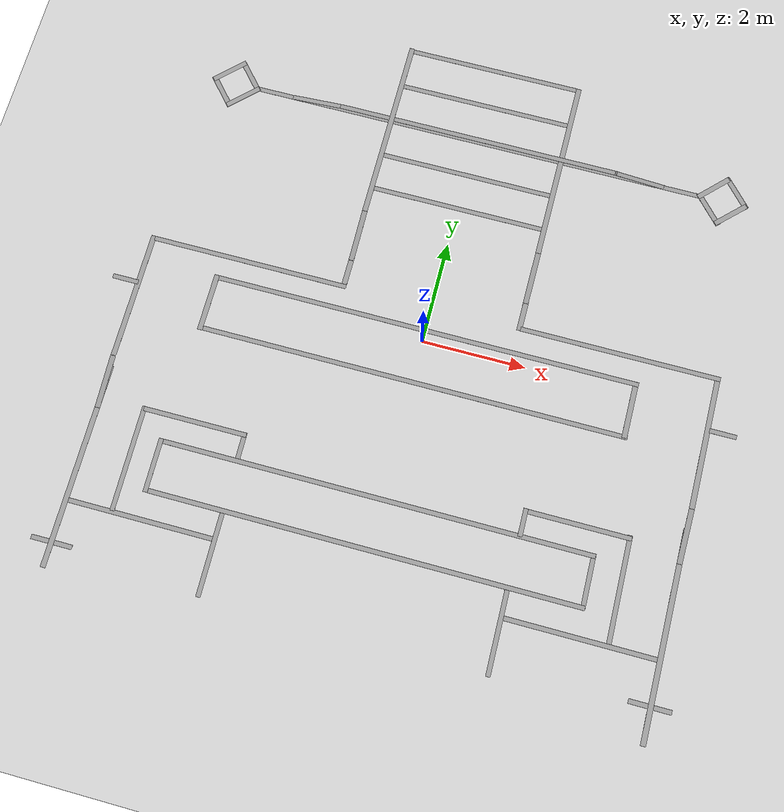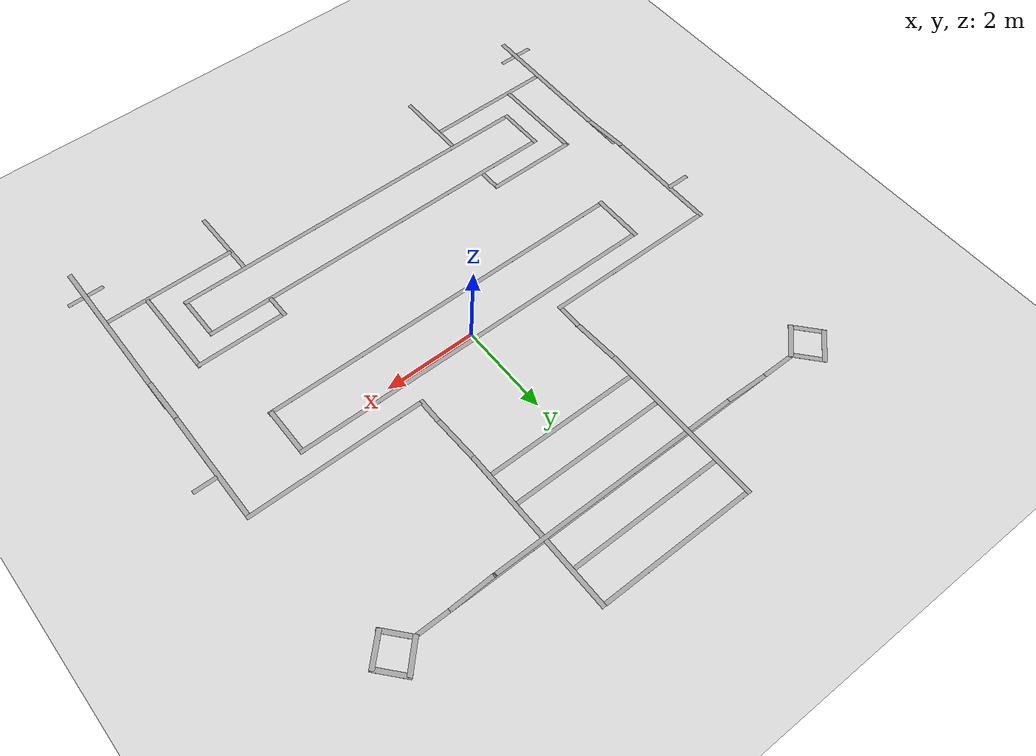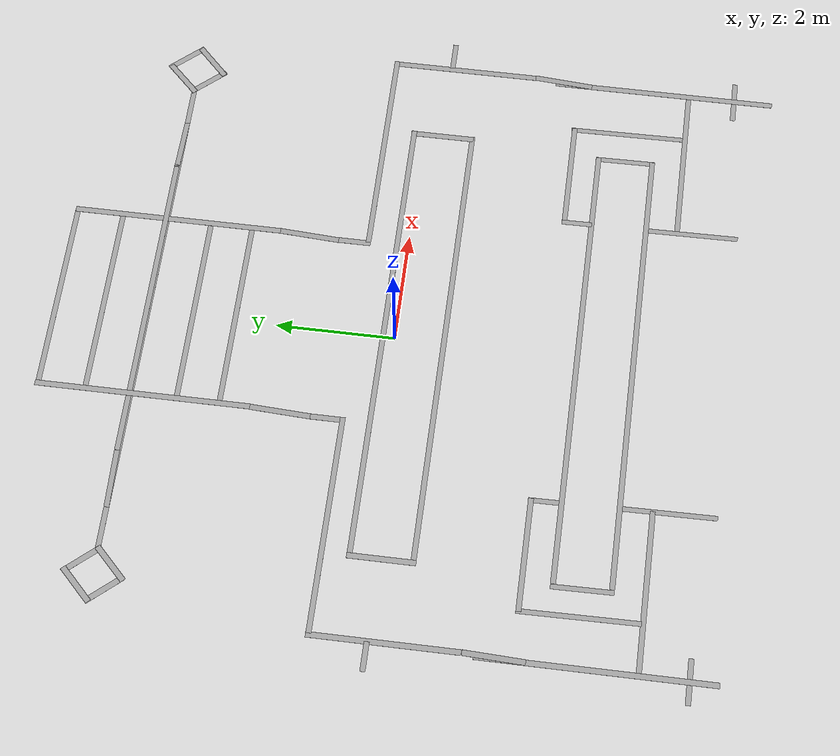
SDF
<sdf version="1.7">
 <world name="default">
  <light name="sun" type="directional">
   <pose>0 0 10 0 -0 0</pose>
   <diffuse>0.8 0.8 0.8 1</diffuse>
   <specular>0.2 0.2 0.2 1</specular>
   <attenuation>
    <range>1000</range>
    <constant>0.9</constant>
    <linear>0.01</linear>
    <quadratic>0.001</quadratic>
   </attenuation>
   <direction>-0.5 0.1 -0.9</direction>
   <spot><inner_angle>0</inner_angle><outer_angle>0</outer_angle><falloff>0</falloff></spot>
  </light>
  <model name="ground_plane">
   <static>1</static>
   <link name="link">
    <collision name="collision">
     <geometry><plane><normal>0 0 1</normal><size>100 100</size></plane></geometry>
     <surface>
      <contact><collide_bitmask>65535</collide_bitmask></contact>
      <friction><ode><mu>100</mu><mu2>50</mu2></ode></friction>
     </surface>
    </collision>
    <visual name="visual">
     <cast_shadows>0</cast_shadows>
     <geometry><plane><normal>0 0 1</normal><size>100 100</size></plane></geometry>
     <material>
      <script><uri>file://media/materials/scripts/gazebo.material</uri><name>Gazebo/Grey</name></script>
     </material>
    </visual>
   </link>
  </model>
  <gravity>0 0 -9.8</gravity>
  <magnetic_field>6e-06 2.3e-05 -4.2e-05</magnetic_field>
  <atmosphere type="adiabatic"/>
  <physics type="ode">
   <max_step_size>0.001</max_step_size>
   <real_time_factor>1</real_time_factor>
   <real_time_update_rate>1000</real_time_update_rate>
  </physics>
  <scene><ambient>0.4 0.4 0.4 1</ambient><background>0.7 0.7 0.7 1</background><shadows>1</shadows></scene>
  <spherical_coordinates>
   <surface_model>EARTH_WGS84</surface_model>
   <latitude_deg>0</latitude_deg>
   <longitude_deg>0</longitude_deg>
   <elevation>0</elevation>
   <heading_deg>0</heading_deg>
  </spherical_coordinates>
  <model name="unit_box">
   <pose>-5.50693 -3.8854 0.052849 0 -0 0</pose>
   <link name="link">
    <inertial>
     <mass>0.0001</mass>
     <inertia>
      <ixx>0.166667</ixx>
      <ixy>0</ixy>
      <ixz>0</ixz>
      <iyy>0.166667</iyy>
      <iyz>0</iyz>
      <izz>0.166667</izz>
     </inertia>
    </inertial>
    <visual name="visual">
     <geometry><box><size>0.098577 3.84241 0.001224</size></box></geometry>
     <material>
      <script><name>Gazebo/Grey</name><uri>file://media/materials/scripts/gazebo.material</uri></script>
     </material>
    </visual>
   </link>
  </model>
  <model name="unit_box_clone">
   <pose>5.50813 -4.09598 0.050336 0 -0 0</pose>
   <link name="link">
    <inertial>
     <mass>0.0001</mass>
     <inertia>
      <ixx>0.166667</ixx>
      <ixy>0</ixy>
      <ixz>0</ixz>
      <iyy>0.166667</iyy>
      <iyz>0</iyz>
      <izz>0.166667</izz>
     </inertia>
    </inertial>
    <collision name="collision"><geometry><box><size>0.098577 3.84242 0.001224</size></box></geometry></collision>
    <visual name="visual">
     <geometry><box><size>0.098577 3.84242 0.001224</size></box></geometry>
     <material>
      <script><name>Gazebo/Grey</name><uri>file://media/materials/scripts/gazebo.material</uri></script>
     </material>
    </visual>
   </link>
  </model>
  <model name="unit_box_clone_0">
   <pose>-5.50418 -2.28247 0.107411 0.10236 -0 0</pose>
   <link name="link">
    <inertial>
     <mass>0.0001</mass>
     <inertia>
      <ixx>0.166667</ixx>
      <ixy>0</ixy>
      <ixz>0</ixz>
      <iyy>0.166667</iyy>
      <iyz>0</iyz>
      <izz>0.166667</izz>
     </inertia>
    </inertial>
    <collision name="collision">
     <geometry><box><size>0.0991261 1.00988 0.001224</size></box></geometry>
    </collision>
    <visual name="visual">
     <geometry><box><size>0.0991261 1.00988 0.001224</size></box></geometry>
     <material>
      <script><name>Gazebo/Grey</name><uri>file://media/materials/scripts/gazebo.material</uri></script>
     </material>
    </visual>
   </link>
  </model>
  <model name="unit_box_clone_0_clone">
   <pose>5.50542 -2.31932 0.110539 0.10236 -0 0</pose>
   <link name="link">
    <inertial>
     <mass>0.0001</mass>
     <inertia>
      <ixx>0.166667</ixx>
      <ixy>0</ixy>
      <ixz>0</ixz>
      <iyy>0.166667</iyy>
      <iyz>0</iyz>
      <izz>0.166667</izz>
     </inertia>
    </inertial>
    <collision name="collision"><geometry><box><size>0.099126 1.01352 0.001224</size></box></geometry></collision>
    <visual name="visual">
     <geometry><box><size>0.099126 1.01352 0.001224</size></box></geometry>
     <material>
      <script><name>Gazebo/Grey</name><uri>file://media/materials/scripts/gazebo.material</uri></script>
     </material>
    </visual>
   </link>
  </model>
  <model name="unit_box_clone_1">
   <pose>-5.50417 -0.548126 0.150859 0 -0 0</pose>
   <link name="link">
    <inertial>
     <mass>0.0001</mass>
     <inertia>
      <ixx>0.166667</ixx>
      <ixy>0</ixy>
      <ixz>0</ixz>
      <iyy>0.166667</iyy>
      <iyz>0</iyz>
      <izz>0.166667</izz>
     </inertia>
    </inertial>
    <collision name="collision"><geometry><box><size>0.098577 2.45093 0.001224</size></box></geometry></collision>
    <visual name="visual">
     <geometry><box><size>0.098577 2.45093 0.001224</size></box></geometry>
     <material>
      <script><name>Gazebo/Grey</name><uri>file://media/materials/scripts/gazebo.material</uri></script>
     </material>
    </visual>
   </link>
  </model>
  <model name="unit_box_0">
   <pose>-3.56919 0.632383 0.151567 0 -0 0</pose>
   <link name="link">
    <inertial>
     <mass>0.0001</mass>
     <inertia>
      <ixx>0.166667</ixx>
      <ixy>0</ixy>
      <ixz>0</ixz>
      <iyy>0.166667</iyy>
      <iyz>0</iyz>
      <izz>0.166667</izz>
     </inertia>
    </inertial>
    <collision name="collision">
     <geometry><box><size>3.81871 0.0868959 0.000216</size></box></geometry>
    </collision>
    <visual name="visual">
     <geometry><box><size>3.81871 0.0868959 0.000216</size></box></geometry>
     <material>
      <script><name>Gazebo/Grey</name><uri>file://media/materials/scripts/gazebo.material</uri></script>
     </material>
    </visual>
   </link>
  </model>
  <model name="unit_box_clone_0_clone_0">
   <pose>-1.70866 1.67139 0.20374 0.10236 -0 0</pose>
   <link name="link">
    <inertial>
     <mass>0.0001</mass>
     <inertia>
      <ixx>0.166667</ixx>
      <ixy>0</ixy>
      <ixz>0</ixz>
      <iyy>0.166667</iyy>
      <iyz>0</iyz>
      <izz>0.166667</izz>
     </inertia>
    </inertial>
    <collision name="collision"><geometry><box><size>0.099128 1.00988 0.001224</size></box></geometry></collision>
    <visual name="visual">
     <geometry><box><size>0.099128 1.00988 0.001224</size></box></geometry>
     <material>
      <script><name>Gazebo/Grey</name><uri>file://media/materials/scripts/gazebo.material</uri></script>
     </material>
    </visual>
   </link>
  </model>
  <model name="unit_box_clone_0_clone_1">
   <pose>1.7132 1.66538 0.198085 0.099241 -0 0</pose>
   <link name="link">
    <inertial>
     <mass>0.0001</mass>
     <inertia>
      <ixx>0.166667</ixx>
      <ixy>0</ixy>
      <ixz>0</ixz>
      <iyy>0.166667</iyy>
      <iyz>0</iyz>
      <izz>0.166667</izz>
     </inertia>
    </inertial>
    <collision name="collision"><geometry><box><size>0.099126 1.06359 0.001224</size></box></geometry></collision>
    <visual name="visual">
     <geometry><box><size>0.099126 1.06359 0.001224</size></box></geometry>
     <material>
      <script><name>Gazebo/Grey</name><uri>file://media/materials/scripts/gazebo.material</uri></script>
     </material>
    </visual>
   </link>
  </model>
  <model name="unit_box_clone_1_clone">
   <pose>-1.70772 0.918533 0.150446 0 -0 0</pose>
   <link name="link">
    <inertial>
     <mass>0.0001</mass>
     <inertia>
      <ixx>0.166667</ixx>
      <ixy>0</ixy>
      <ixz>0</ixz>
      <iyy>0.166667</iyy>
      <iyz>0</iyz>
      <izz>0.166667</izz>
     </inertia>
    </inertial>
    <collision name="collision">
     <geometry><box><size>0.098577 0.517114 0.001224</size></box></geometry>
    </collision>
    <visual name="visual">
     <geometry><box><size>0.098577 0.517114 0.001224</size></box></geometry>
     <material>
      <script><name>Gazebo/Grey</name><uri>file://media/materials/scripts/gazebo.material</uri></script>
     </material>
    </visual>
   </link>
  </model>
  <model name="unit_box_clone_1_clone_0">
   <pose>5.50739 -0.59119 0.149631 0 -0 0</pose>
   <link name="link">
    <inertial>
     <mass>0.0001</mass>
     <inertia>
      <ixx>0.166667</ixx>
      <ixy>0</ixy>
      <ixz>0</ixz>
      <iyy>0.166667</iyy>
      <iyz>0</iyz>
      <izz>0.166667</izz>
     </inertia>
    </inertial>
    <collision name="collision"><geometry><box><size>0.098577 2.45093 0.001224</size></box></geometry></collision>
    <visual name="visual">
     <geometry><box><size>0.098577 2.45093 0.001224</size></box></geometry>
     <material>
      <script><name>Gazebo/Grey</name><uri>file://media/materials/scripts/gazebo.material</uri></script>
     </material>
    </visual>
   </link>
  </model>
  <model name="unit_box_0_clone">
   <pose>3.64904 0.677082 0.151567 0 -0 0</pose>
   <link name="link">
    <inertial>
     <mass>0.0001</mass>
     <inertia>
      <ixx>0.166667</ixx>
      <ixy>0</ixy>
      <ixz>0</ixz>
      <iyy>0.166667</iyy>
      <iyz>0</iyz>
      <izz>0.166667</izz>
     </inertia>
    </inertial>
    <collision name="collision"><geometry><box><size>3.81871 0.086896 0.000216</size></box></geometry></collision>
    <visual name="visual">
     <geometry><box><size>3.81871 0.086896 0.000216</size></box></geometry>
     <material>
      <script><name>Gazebo/Grey</name><uri>file://media/materials/scripts/gazebo.material</uri></script>
     </material>
    </visual>
   </link>
  </model>
  <model name="unit_box_clone_1_clone_clone">
   <pose>1.71732 0.923965 0.150446 0 -0 0</pose>
   <link name="link">
    <inertial>
     <mass>0.0001</mass>
     <inertia>
      <ixx>0.166667</ixx>
      <ixy>0</ixy>
      <ixz>0</ixz>
      <iyy>0.166667</iyy>
      <iyz>0</iyz>
      <izz>0.166667</izz>
     </inertia>
    </inertial>
    <collision name="collision">
     <geometry><box><size>0.098577 0.568294 0.001224</size></box></geometry>
    </collision>
    <visual name="visual">
     <geometry><box><size>0.098577 0.568294 0.001224</size></box></geometry>
     <material>
      <script><name>Gazebo/Grey</name><uri>file://media/materials/scripts/gazebo.material</uri></script>
     </material>
    </visual>
   </link>
  </model>
  <model name="unit_box_clone_1_clone_1">
   <pose>-1.70889 3.95703 0.263365 0 -0 0</pose>
   <link name="link">
    <inertial>
     <mass>0.0001</mass>
     <inertia>
      <ixx>0.166667</ixx>
      <ixy>0</ixy>
      <ixz>0</ixz>
      <iyy>0.166667</iyy>
      <iyz>0</iyz>
      <izz>0.166667</izz>
     </inertia>
    </inertial>
    <collision name="collision"><geometry><box><size>0.098577 3.58405 0.001224</size></box></geometry></collision>
    <visual name="visual">
     <geometry><box><size>0.098577 3.58405 0.001224</size></box></geometry>
     <material>
      <script><name>Gazebo/Grey</name><uri>file://media/materials/scripts/gazebo.material</uri></script>
     </material>
    </visual>
   </link>
  </model>
  <model name="unit_box_clone_1_clone_1_clone">
   <pose>1.71131 3.96273 0.251367 0 -0 0</pose>
   <link name="link">
    <inertial>
     <mass>0.0001</mass>
     <inertia>
      <ixx>0.166667</ixx>
      <ixy>0</ixy>
      <ixz>0</ixz>
      <iyy>0.166667</iyy>
      <iyz>0</iyz>
      <izz>0.166667</izz>
     </inertia>
    </inertial>
    <collision name="collision"><geometry><box><size>0.098577 3.55177 0.001224</size></box></geometry></collision>
    <visual name="visual">
     <geometry><box><size>0.098577 3.55177 0.001224</size></box></geometry>
     <material>
      <script><name>Gazebo/Grey</name><uri>file://media/materials/scripts/gazebo.material</uri></script>
     </material>
    </visual>
   </link>
  </model>
  <model name="unit_box_0_clone_0">
   <pose>-0.021889 5.70066 0.25052 0 -0 0</pose>
   <link name="link">
    <inertial>
     <mass>0.0001</mass>
     <inertia>
      <ixx>0.166667</ixx>
      <ixy>0</ixy>
      <ixz>0</ixz>
      <iyy>0.166667</iyy>
      <iyz>0</iyz>
      <izz>0.166667</izz>
     </inertia>
    </inertial>
    <collision name="collision"><geometry><box><size>3.39662 0.086896 0.000216</size></box></geometry></collision>
    <visual name="visual">
     <geometry><box><size>3.39662 0.086896 0.000216</size></box></geometry>
     <material>
      <script><name>Gazebo/Grey</name><uri>file://media/materials/scripts/gazebo.material</uri></script>
     </material>
    </visual>
   </link>
  </model>
  <model name="unit_box_0_clone_0_clone">
   <pose>-0.025951 4.91228 0.25052 0 -0 0</pose>
   <link name="link">
    <inertial>
     <mass>0.0001</mass>
     <inertia>
      <ixx>0.166667</ixx>
      <ixy>0</ixy>
      <ixz>0</ixz>
      <iyy>0.166667</iyy>
      <iyz>0</iyz>
      <izz>0.166667</izz>
     </inertia>
    </inertial>
    <collision name="collision"><geometry><box><size>3.39662 0.086896 0.000216</size></box></geometry></collision>
    <visual name="visual">
     <geometry><box><size>3.39662 0.086896 0.000216</size></box></geometry>
     <material>
      <script><name>Gazebo/Grey</name><uri>file://media/materials/scripts/gazebo.material</uri></script>
     </material>
    </visual>
   </link>
  </model>
  <model name="unit_box_0_clone_0_clone_0">
   <pose>0.031125 4.17474 0.252546 0 -0 0</pose>
   <link name="link">
    <inertial>
     <mass>0.0001</mass>
     <inertia>
      <ixx>0.166667</ixx>
      <ixy>0</ixy>
      <ixz>0</ixz>
      <iyy>0.166667</iyy>
      <iyz>0</iyz>
      <izz>0.166667</izz>
     </inertia>
    </inertial>
    <collision name="collision"><geometry><box><size>5.58282 0.086896 0.000216</size></box></geometry></collision>
    <visual name="visual">
     <geometry><box><size>5.58282 0.086896 0.000216</size></box></geometry>
     <material>
      <script><name>Gazebo/Grey</name><uri>file://media/materials/scripts/gazebo.material</uri></script>
     </material>
    </visual>
   </link>
  </model>
  <model name="unit_box_0_clone_0_clone_1">
   <pose>0.003157 3.38699 0.25052 0 -0 0</pose>
   <link name="link">
    <inertial>
     <mass>0.0001</mass>
     <inertia>
      <ixx>0.166667</ixx>
      <ixy>0</ixy>
      <ixz>0</ixz>
      <iyy>0.166667</iyy>
      <iyz>0</iyz>
      <izz>0.166667</izz>
     </inertia>
    </inertial>
    <collision name="collision"><geometry><box><size>3.39662 0.086896 0.000216</size></box></geometry></collision>
    <visual name="visual">
     <geometry><box><size>3.39662 0.086896 0.000216</size></box></geometry>
     <material>
      <script><name>Gazebo/Grey</name><uri>file://media/materials/scripts/gazebo.material</uri></script>
     </material>
    </visual>
   </link>
  </model>
  <model name="unit_box_0_clone_0_clone_2">
   <pose>0.00759 2.6735 0.25052 0 -0 0</pose>
   <link name="link">
    <inertial>
     <mass>0.0001</mass>
     <inertia>
      <ixx>0.166667</ixx>
      <ixy>0</ixy>
      <ixz>0</ixz>
      <iyy>0.166667</iyy>
      <iyz>0</iyz>
      <izz>0.166667</izz>
     </inertia>
    </inertial>
    <collision name="collision"><geometry><box><size>3.39662 0.086896 0.000216</size></box></geometry></collision>
    <visual name="visual">
     <geometry><box><size>3.39662 0.086896 0.000216</size></box></geometry>
     <material>
      <script><name>Gazebo/Grey</name><uri>file://media/materials/scripts/gazebo.material</uri></script>
     </material>
    </visual>
   </link>
  </model>
  <model name="unit_box_0_clone_1">
   <pose>-4.08327 -4.54538 0.050201 0 -0 0</pose>
   <link name="link">
    <inertial>
     <mass>0.0001</mass>
     <inertia>
      <ixx>0.166667</ixx>
      <ixy>0</ixy>
      <ixz>0</ixz>
      <iyy>0.166667</iyy>
      <iyz>0</iyz>
      <izz>0.166667</izz>
     </inertia>
    </inertial>
    <collision name="collision"><geometry><box><size>2.83606 0.086896 0.000216</size></box></geometry></collision>
    <visual name="visual">
     <geometry><box><size>2.83606 0.086896 0.000216</size></box></geometry>
     <material>
      <script><name>Gazebo/Grey</name><uri>file://media/materials/scripts/gazebo.material</uri></script>
     </material>
    </visual>
   </link>
  </model>
  <model name="unit_box_0_clone_1_clone">
   <pose>-4.64514 -3.53047 0.050951 0 0 -1.55807</pose>
   <link name="link">
    <inertial>
     <mass>0.0001</mass>
     <inertia>
      <ixx>0.166667</ixx>
      <ixy>0</ixy>
      <ixz>0</ixz>
      <iyy>0.166667</iyy>
      <iyz>0</iyz>
      <izz>0.166667</izz>
     </inertia>
    </inertial>
    <collision name="collision"><geometry><box><size>1.98639 0.086896 0.000216</size></box></geometry></collision>
    <visual name="visual">
     <geometry><box><size>1.98639 0.086896 0.000216</size></box></geometry>
     <material>
      <script><name>Gazebo/Grey</name><uri>file://media/materials/scripts/gazebo.material</uri></script>
     </material>
    </visual>
   </link>
  </model>
  <model name="unit_box_0_clone_1_clone_clone">
   <pose>-3.67206 -2.57922 0.053415 0 -0 0.001605</pose>
   <link name="link">
    <inertial>
     <mass>0.0001</mass>
     <inertia>
      <ixx>0.166667</ixx>
      <ixy>0</ixy>
      <ixz>0</ixz>
      <iyy>0.166667</iyy>
      <iyz>0</iyz>
      <izz>0.166667</izz>
     </inertia>
    </inertial>
    <collision name="collision"><geometry><box><size>1.98639 0.086896 0.000216</size></box></geometry></collision>
    <visual name="visual">
     <geometry><box><size>1.98639 0.086896 0.000216</size></box></geometry>
     <material>
      <script><name>Gazebo/Grey</name><uri>file://media/materials/scripts/gazebo.material</uri></script>
     </material>
    </visual>
   </link>
  </model>
  <model name="unit_box_0_clone_1_clone_0">
   <pose>4.05235 -4.54565 0.050201 0 -0 0</pose>
   <link name="link">
    <inertial>
     <mass>0.0001</mass>
     <inertia>
      <ixx>0.166667</ixx>
      <ixy>0</ixy>
      <ixz>0</ixz>
      <iyy>0.166667</iyy>
      <iyz>0</iyz>
      <izz>0.166667</izz>
     </inertia>
    </inertial>
    <collision name="collision"><geometry><box><size>2.83606 0.086896 0.000216</size></box></geometry></collision>
    <visual name="visual">
     <geometry><box><size>2.83606 0.086896 0.000216</size></box></geometry>
     <material>
      <script><name>Gazebo/Grey</name><uri>file://media/materials/scripts/gazebo.material</uri></script>
     </material>
    </visual>
   </link>
  </model>
  <model name="unit_box_0_clone_1_clone_clone_clone">
   <pose>3.59933 -2.60411 0.051867 0 -0 0.001605</pose>
   <link name="link">
    <inertial>
     <mass>0.0001</mass>
     <inertia>
      <ixx>0.166667</ixx>
      <ixy>0</ixy>
      <ixz>0</ixz>
      <iyy>0.166667</iyy>
      <iyz>0</iyz>
      <izz>0.166667</izz>
     </inertia>
    </inertial>
    <collision name="collision"><geometry><box><size>1.98639 0.086896 0.000216</size></box></geometry></collision>
    <visual name="visual">
     <geometry><box><size>1.98639 0.086896 0.000216</size></box></geometry>
     <material>
      <script><name>Gazebo/Grey</name><uri>file://media/materials/scripts/gazebo.material</uri></script>
     </material>
    </visual>
   </link>
  </model>
  <model name="unit_box_0_clone_1_clone_clone_1_clone">
   <pose>4.56693 -3.54238 0.050201 0 0 -1.55807</pose>
   <link name="link">
    <inertial>
     <mass>0.0001</mass>
     <inertia>
      <ixx>0.166667</ixx>
      <ixy>0</ixy>
      <ixz>0</ixz>
      <iyy>0.166667</iyy>
      <iyz>0</iyz>
      <izz>0.166667</izz>
     </inertia>
    </inertial>
    <collision name="collision"><geometry><box><size>1.98639 0.086896 0.000216</size></box></geometry></collision>
    <visual name="visual">
     <geometry><box><size>1.98639 0.086896 0.000216</size></box></geometry>
     <material>
      <script><name>Gazebo/Grey</name><uri>file://media/materials/scripts/gazebo.material</uri></script>
     </material>
    </visual>
   </link>
  </model>
  <model name="unit_box_0_clone_0_clone_2_clone">
   <pose>0.030225 0.183397 0.161923 0 -0 0</pose>
   <link name="link">
    <inertial>
     <mass>0.0001</mass>
     <inertia>
      <ixx>0.166667</ixx>
      <ixy>0</ixy>
      <ixz>0</ixz>
      <iyy>0.166667</iyy>
      <iyz>0</iyz>
      <izz>0.166667</izz>
     </inertia>
    </inertial>
    <collision name="collision"><geometry><box><size>8.15199 0.086896 0.000216</size></box></geometry></collision>
    <visual name="visual">
     <geometry><box><size>8.15199 0.086896 0.000216</size></box></geometry>
     <material>
      <script><name>Gazebo/Grey</name><uri>file://media/materials/scripts/gazebo.material</uri></script>
     </material>
    </visual>
   </link>
  </model>
  <model name="unit_box_clone_1_clone_2">
   <pose>-4.09282 -0.329336 0.157622 0 -0 0</pose>
   <link name="link">
    <inertial>
     <mass>0.0001</mass>
     <inertia>
      <ixx>0.166667</ixx>
      <ixy>0</ixy>
      <ixz>0</ixz>
      <iyy>0.166667</iyy>
      <iyz>0</iyz>
      <izz>0.166667</izz>
     </inertia>
    </inertial>
    <collision name="collision"><geometry><box><size>0.098577 1.1161 0.001224</size></box></geometry></collision>
    <visual name="visual">
     <geometry><box><size>0.098577 1.1161 0.001224</size></box></geometry>
     <material>
      <script><name>Gazebo/Grey</name><uri>file://media/materials/scripts/gazebo.material</uri></script>
     </material>
    </visual>
   </link>
  </model>
  <model name="unit_box_0_clone_0_clone_2_clone_clone">
   <pose>-0.011101 -0.840192 0.151393 0 -0 0</pose>
   <link name="link">
    <inertial>
     <mass>0.0001</mass>
     <inertia>
      <ixx>0.166667</ixx>
      <ixy>0</ixy>
      <ixz>0</ixz>
      <iyy>0.166667</iyy>
      <iyz>0</iyz>
      <izz>0.166667</izz>
     </inertia>
    </inertial>
    <collision name="collision"><geometry><box><size>8.24492 0.086896 0.000216</size></box></geometry></collision>
    <visual name="visual">
     <geometry><box><size>8.24492 0.086896 0.000216</size></box></geometry>
     <material>
      <script><name>Gazebo/Grey</name><uri>file://media/materials/scripts/gazebo.material</uri></script>
     </material>
    </visual>
   </link>
  </model>
  <model name="unit_box_clone_1_clone_2_clone">
   <pose>4.05399 -0.314369 0.158111 0 -0 0</pose>
   <link name="link">
    <inertial>
     <mass>0.0001</mass>
     <inertia>
      <ixx>0.166667</ixx>
      <ixy>0</ixy>
      <ixz>0</ixz>
      <iyy>0.166667</iyy>
      <iyz>0</iyz>
      <izz>0.166667</izz>
     </inertia>
    </inertial>
    <collision name="collision"><geometry><box><size>0.098577 1.08806 0.001224</size></box></geometry></collision>
    <visual name="visual">
     <geometry><box><size>0.098577 1.08806 0.001224</size></box></geometry>
     <material>
      <script><name>Gazebo/Grey</name><uri>file://media/materials/scripts/gazebo.material</uri></script>
     </material>
    </visual>
   </link>
  </model>
  <model name="unit_box_0_clone_0_clone_2_clone_clone_0">
   <pose>-0.048892 -3.075 0.051525 0 -0 0</pose>
   <link name="link">
    <inertial>
     <mass>0.0001</mass>
     <inertia>
      <ixx>0.166667</ixx>
      <ixy>0</ixy>
      <ixz>0</ixz>
      <iyy>0.166667</iyy>
      <iyz>0</iyz>
      <izz>0.166667</izz>
     </inertia>
    </inertial>
    <collision name="collision"><geometry><box><size>8.15199 0.086896 0.000216</size></box></geometry></collision>
    <visual name="visual">
     <geometry><box><size>8.15199 0.086896 0.000216</size></box></geometry>
     <material>
      <script><name>Gazebo/Grey</name><uri>file://media/materials/scripts/gazebo.material</uri></script>
     </material>
    </visual>
   </link>
  </model>
  <model name="unit_box_0_clone_0_clone_2_clone_clone_0_clone">
   <pose>-0.036732 -4.013 0.053403 0 -0 0</pose>
   <link name="link">
    <inertial>
     <mass>0.0001</mass>
     <inertia>
      <ixx>0.166667</ixx>
      <ixy>0</ixy>
      <ixz>0</ixz>
      <iyy>0.166667</iyy>
      <iyz>0</iyz>
      <izz>0.166667</izz>
     </inertia>
    </inertial>
    <collision name="collision"><geometry><box><size>8.15199 0.086896 0.000216</size></box></geometry></collision>
    <visual name="visual">
     <geometry><box><size>8.15199 0.086896 0.000216</size></box></geometry>
     <material>
      <script><name>Gazebo/Grey</name><uri>file://media/materials/scripts/gazebo.material</uri></script>
     </material>
    </visual>
   </link>
  </model>
  <model name="unit_box_0_clone_1_clone_clone_0">
   <pose>-4.16704 -3.54327 0.050201 0 0 -1.55807</pose>
   <link name="link">
    <inertial>
     <mass>0.0001</mass>
     <inertia>
      <ixx>0.166667</ixx>
      <ixy>0</ixy>
      <ixz>0</ixz>
      <iyy>0.166667</iyy>
      <iyz>0</iyz>
      <izz>0.166667</izz>
     </inertia>
    </inertial>
    <collision name="collision"><geometry><box><size>1.01836 0.086896 0.000216</size></box></geometry></collision>
    <visual name="visual">
     <geometry><box><size>1.01836 0.086896 0.000216</size></box></geometry>
     <material>
      <script><name>Gazebo/Grey</name><uri>file://media/materials/scripts/gazebo.material</uri></script>
     </material>
    </visual>
   </link>
  </model>
  <model name="unit_box_0_clone_1_clone_clone_0_clone">
   <pose>3.99663 -3.53937 0.050201 0 0 -1.55807</pose>
   <link name="link">
    <inertial>
     <mass>0.0001</mass>
     <inertia>
      <ixx>0.166667</ixx>
      <ixy>0</ixy>
      <ixz>0</ixz>
      <iyy>0.166667</iyy>
      <iyz>0</iyz>
      <izz>0.166667</izz>
     </inertia>
    </inertial>
    <collision name="collision"><geometry><box><size>1.01836 0.086896 0.000216</size></box></geometry></collision>
    <visual name="visual">
     <geometry><box><size>1.01836 0.086896 0.000216</size></box></geometry>
     <material>
      <script><name>Gazebo/Grey</name><uri>file://media/materials/scripts/gazebo.material</uri></script>
     </material>
    </visual>
   </link>
  </model>
  <model name="unit_box_0_clone_1_clone_clone_0_clone_0">
   <pose>-2.70933 -2.82324 0.050201 0 0 -1.55807</pose>
   <link name="link">
    <inertial>
     <mass>0.0001</mass>
     <inertia>
      <ixx>0.166667</ixx>
      <ixy>0</ixy>
      <ixz>0</ixz>
      <iyy>0.166667</iyy>
      <iyz>0</iyz>
      <izz>0.166667</izz>
     </inertia>
    </inertial>
    <collision name="collision"><geometry><box><size>0.58059 0.086896 0.000216</size></box></geometry></collision>
    <visual name="visual">
     <geometry><box><size>0.58059 0.086896 0.000216</size></box></geometry>
     <material>
      <script><name>Gazebo/Grey</name><uri>file://media/materials/scripts/gazebo.material</uri></script>
     </material>
    </visual>
   </link>
  </model>
  <model name="unit_box_0_clone_1_clone_clone_0_clone_0_clone">
   <pose>-2.67281 -4.81428 0.050201 0 0 -1.55807</pose>
   <link name="link">
    <inertial>
     <mass>0.0001</mass>
     <inertia>
      <ixx>0.166667</ixx>
      <ixy>0</ixy>
      <ixz>0</ixz>
      <iyy>0.166667</iyy>
      <iyz>0</iyz>
      <izz>0.166667</izz>
     </inertia>
    </inertial>
    <collision name="collision"><geometry><box><size>1.5507 0.086896 0.000216</size></box></geometry></collision>
    <visual name="visual">
     <geometry><box><size>1.5507 0.086896 0.000216</size></box></geometry>
     <material>
      <script><name>Gazebo/Grey</name><uri>file://media/materials/scripts/gazebo.material</uri></script>
     </material>
    </visual>
   </link>
  </model>
  <model name="unit_box_0_clone_1_clone_clone_0_clone_0_clone_1">
   <pose>2.6271 -2.82032 0.051883 0 0 -1.55807</pose>
   <link name="link">
    <inertial>
     <mass>0.0001</mass>
     <inertia>
      <ixx>0.166667</ixx>
      <ixy>0</ixy>
      <ixz>0</ixz>
      <iyy>0.166667</iyy>
      <iyz>0</iyz>
      <izz>0.166667</izz>
     </inertia>
    </inertial>
    <collision name="collision">
     <geometry><box><size>0.519634 0.086896 0.000216</size></box></geometry>
    </collision>
    <visual name="visual">
     <geometry><box><size>0.519634 0.086896 0.000216</size></box></geometry>
     <material>
      <script><name>Gazebo/Grey</name><uri>file://media/materials/scripts/gazebo.material</uri></script>
     </material>
    </visual>
   </link>
  </model>
  <model name="unit_box_0_clone_1_clone_clone_0_clone_0_clone_clone">
   <pose>2.64098 -4.81208 0.050201 0 0 -1.55807</pose>
   <link name="link">
    <inertial>
     <mass>0.0001</mass>
     <inertia>
      <ixx>0.166667</ixx>
      <ixy>0</ixy>
      <ixz>0</ixz>
      <iyy>0.166667</iyy>
      <iyz>0</iyz>
      <izz>0.166667</izz>
     </inertia>
    </inertial>
    <collision name="collision"><geometry><box><size>1.5507 0.086896 0.000216</size></box></geometry></collision>
    <visual name="visual">
     <geometry><box><size>1.5507 0.086896 0.000216</size></box></geometry>
     <material>
      <script><name>Gazebo/Grey</name><uri>file://media/materials/scripts/gazebo.material</uri></script>
     </material>
    </visual>
   </link>
  </model>
  <model name="unit_box_0_clone_0_clone_1_clone">
   <pose>3.27561 4.17242 0.203828 0 0.101953 0</pose>
   <link name="link">
    <inertial>
     <mass>0.0001</mass>
     <inertia>
      <ixx>0.166667</ixx>
      <ixy>0</ixy>
      <ixz>0</ixz>
      <iyy>0.166667</iyy>
      <iyz>0</iyz>
      <izz>0.166667</izz>
     </inertia>
    </inertial>
    <collision name="collision">
     <geometry><box><size>0.991941 0.086896 0.000216</size></box></geometry>
    </collision>
    <visual name="visual">
     <geometry><box><size>0.991941 0.086896 0.000216</size></box></geometry>
     <material>
      <script><name>Gazebo/Grey</name><uri>file://media/materials/scripts/gazebo.material</uri></script>
     </material>
    </visual>
   </link>
  </model>
  <model name="unit_box_0_clone_0_clone_1_clone_clone">
   <pose>-3.2471 4.17368 0.199931 0 -0.099827 0</pose>
   <link name="link">
    <inertial>
     <mass>0.0001</mass>
     <inertia>
      <ixx>0.166667</ixx>
      <ixy>0</ixy>
      <ixz>0</ixz>
      <iyy>0.166667</iyy>
      <iyz>0</iyz>
      <izz>0.166667</izz>
     </inertia>
    </inertial>
    <collision name="collision"><geometry><box><size>0.99194 0.086896 0.000216</size></box></geometry></collision>
    <visual name="visual">
     <geometry><box><size>0.99194 0.086896 0.000216</size></box></geometry>
     <material>
      <script><name>Gazebo/Grey</name><uri>file://media/materials/scripts/gazebo.material</uri></script>
     </material>
    </visual>
   </link>
  </model>
  <model name="unit_box_0_clone_0_clone_0_clone">
   <pose>0.009542 4.17154 0.145223 0 -0 0</pose>
   <link name="link">
    <inertial>
     <mass>0.0001</mass>
     <inertia>
      <ixx>0.166667</ixx>
      <ixy>0</ixy>
      <ixz>0</ixz>
      <iyy>0.166667</iyy>
      <iyz>0</iyz>
      <izz>0.166667</izz>
     </inertia>
    </inertial>
    <collision name="collision"><geometry><box><size>8.9613 0.086896 0.000216</size></box></geometry></collision>
    <visual name="visual">
     <geometry><box><size>8.9613 0.086896 0.000216</size></box></geometry>
     <material>
      <script><name>Gazebo/Grey</name><uri>file://media/materials/scripts/gazebo.material</uri></script>
     </material>
    </visual>
   </link>
  </model>
  <model name="unit_box_clone_1_clone_2_clone_clone">
   <pose>4.71049 4.40739 0.149023 0 0 -0.784387</pose>
   <link name="link">
    <inertial>
     <mass>0.0001</mass>
     <inertia>
      <ixx>0.166667</ixx>
      <ixy>0</ixy>
      <ixz>0</ixz>
      <iyy>0.166667</iyy>
      <iyz>0</iyz>
      <izz>0.166667</izz>
     </inertia>
    </inertial>
    <collision name="collision">
     <geometry><box><size>0.098577 0.731669 0.001224</size></box></geometry>
    </collision>
    <visual name="visual">
     <geometry><box><size>0.098577 0.731669 0.001224</size></box></geometry>
     <material>
      <script><name>Gazebo/Grey</name><uri>file://media/materials/scripts/gazebo.material</uri></script>
     </material>
    </visual>
   </link>
  </model>
  <model name="unit_box_clone_1_clone_2_clone_clone_clone">
   <pose>5.13455 3.94676 0.149023 0 0 -0.800757</pose>
   <link name="link">
    <inertial>
     <mass>0.0001</mass>
     <inertia>
      <ixx>0.166667</ixx>
      <ixy>0</ixy>
      <ixz>0</ixz>
      <iyy>0.166667</iyy>
      <iyz>0</iyz>
      <izz>0.166667</izz>
     </inertia>
    </inertial>
    <collision name="collision">
     <geometry><box><size>0.098577 0.731669 0.001224</size></box></geometry>
    </collision>
    <visual name="visual">
     <geometry><box><size>0.098577 0.731669 0.001224</size></box></geometry>
     <material>
      <script><name>Gazebo/Grey</name><uri>file://media/materials/scripts/gazebo.material</uri></script>
     </material>
    </visual>
   </link>
  </model>
  <model name="unit_box_clone_1_clone_2_clone_clone_clone_0">
   <pose>4.69572 3.94933 0.144831 0 0 -2.41048</pose>
   <link name="link">
    <inertial>
     <mass>0.0001</mass>
     <inertia>
      <ixx>0.166667</ixx>
      <ixy>0</ixy>
      <ixz>0</ixz>
      <iyy>0.166667</iyy>
      <iyz>0</iyz>
      <izz>0.166667</izz>
     </inertia>
    </inertial>
    <collision name="collision">
     <geometry><box><size>0.098577 0.731669 0.001224</size></box></geometry>
    </collision>
    <visual name="visual">
     <geometry><box><size>0.098577 0.731669 0.001224</size></box></geometry>
     <material>
      <script><name>Gazebo/Grey</name><uri>file://media/materials/scripts/gazebo.material</uri></script>
     </material>
    </visual>
   </link>
  </model>
  <model name="unit_box_clone_1_clone_2_clone_clone_clone_0_clone">
   <pose>5.16337 4.41524 0.144831 0 0 -2.41048</pose>
   <link name="link">
    <inertial>
     <mass>0.0001</mass>
     <inertia>
      <ixx>0.166667</ixx>
      <ixy>0</ixy>
      <ixz>0</ixz>
      <iyy>0.166667</iyy>
      <iyz>0</iyz>
      <izz>0.166667</izz>
     </inertia>
    </inertial>
    <collision name="collision">
     <geometry><box><size>0.098577 0.731669 0.001224</size></box></geometry>
    </collision>
    <visual name="visual">
     <geometry><box><size>0.098577 0.731669 0.001224</size></box></geometry>
     <material>
      <script><name>Gazebo/Grey</name><uri>file://media/materials/scripts/gazebo.material</uri></script>
     </material>
    </visual>
   </link>
  </model>
  <model name="unit_box_clone_1_clone_2_clone_clone_clone_clone">
   <pose>-4.70846 3.925 0.149023 0 0 -0.800757</pose>
   <link name="link">
    <inertial>
     <mass>0.0001</mass>
     <inertia>
      <ixx>0.166667</ixx>
      <ixy>0</ixy>
      <ixz>0</ixz>
      <iyy>0.166667</iyy>
      <iyz>0</iyz>
      <izz>0.166667</izz>
     </inertia>
    </inertial>
    <collision name="collision">
     <geometry><box><size>0.098577 0.731669 0.001224</size></box></geometry>
    </collision>
    <visual name="visual">
     <geometry><box><size>0.098577 0.731669 0.001224</size></box></geometry>
     <material>
      <script><name>Gazebo/Grey</name><uri>file://media/materials/scripts/gazebo.material</uri></script>
     </material>
    </visual>
   </link>
  </model>
  <model name="unit_box_clone_1_clone_2_clone_clone_clone_clone_0">
   <pose>-5.12754 4.40248 0.149023 0 0 -0.800757</pose>
   <link name="link">
    <inertial>
     <mass>0.0001</mass>
     <inertia>
      <ixx>0.166667</ixx>
      <ixy>0</ixy>
      <ixz>0</ixz>
      <iyy>0.166667</iyy>
      <iyz>0</iyz>
      <izz>0.166667</izz>
     </inertia>
    </inertial>
    <collision name="collision">
     <geometry><box><size>0.098577 0.731669 0.001224</size></box></geometry>
    </collision>
    <visual name="visual">
     <geometry><box><size>0.098577 0.731669 0.001224</size></box></geometry>
     <material>
      <script><name>Gazebo/Grey</name><uri>file://media/materials/scripts/gazebo.material</uri></script>
     </material>
    </visual>
   </link>
  </model>
  <model name="unit_box_clone_1_clone_2_clone_clone_clone_0_clone_0">
   <pose>-4.68476 4.38456 0.144831 0 0 -2.41048</pose>
   <link name="link">
    <inertial>
     <mass>0.0001</mass>
     <inertia>
      <ixx>0.166667</ixx>
      <ixy>0</ixy>
      <ixz>0</ixz>
      <iyy>0.166667</iyy>
      <iyz>0</iyz>
      <izz>0.166667</izz>
     </inertia>
    </inertial>
    <collision name="collision">
     <geometry><box><size>0.098577 0.731669 0.001224</size></box></geometry>
    </collision>
    <visual name="visual">
     <geometry><box><size>0.098577 0.731669 0.001224</size></box></geometry>
     <material>
      <script><name>Gazebo/Grey</name><uri>file://media/materials/scripts/gazebo.material</uri></script>
     </material>
    </visual>
   </link>
  </model>
  <model name="unit_box_clone_1_clone_2_clone_clone_clone_0_clone_0_clone">
   <pose>-5.1512 3.93752 0.144831 0 0 -2.41048</pose>
   <link name="link">
    <inertial>
     <mass>0.0001</mass>
     <inertia>
      <ixx>0.166667</ixx>
      <ixy>0</ixy>
      <ixz>0</ixz>
      <iyy>0.166667</iyy>
      <iyz>0</iyz>
      <izz>0.166667</izz>
     </inertia>
    </inertial>
    <collision name="collision">
     <geometry><box><size>0.098577 0.731669 0.001224</size></box></geometry>
    </collision>
    <visual name="visual">
     <geometry><box><size>0.098577 0.731669 0.001224</size></box></geometry>
     <material>
      <script><name>Gazebo/Grey</name><uri>file://media/materials/scripts/gazebo.material</uri></script>
     </material>
    </visual>
   </link>
  </model>
  <model name="unit_box_0_clone_1_clone_1">
   <pose>-5.50192 -5.3384 0.050201 0 -0 0</pose>
   <link name="link">
    <inertial>
     <mass>0.0001</mass>
     <inertia>
      <ixx>0.166667</ixx>
      <ixy>0</ixy>
      <ixz>0</ixz>
      <iyy>0.166667</iyy>
      <iyz>0</iyz>
      <izz>0.166667</izz>
     </inertia>
    </inertial>
    <collision name="collision">
     <geometry><box><size>0.779173 0.086896 0.000216</size></box></geometry>
    </collision>
    <visual name="visual">
     <geometry><box><size>0.779173 0.086896 0.000216</size></box></geometry>
     <material>
      <script><name>Gazebo/Grey</name><uri>file://media/materials/scripts/gazebo.material</uri></script>
     </material>
    </visual>
   </link>
  </model>
  <model name="unit_box_0_clone_1_clone_1_clone">
   <pose>5.49471 -5.3484 0.050201 0 -0 0</pose>
   <link name="link">
    <inertial>
     <mass>0.0001</mass>
     <inertia>
      <ixx>0.166667</ixx>
      <ixy>0</ixy>
      <ixz>0</ixz>
      <iyy>0.166667</iyy>
      <iyz>0</iyz>
      <izz>0.166667</izz>
     </inertia>
    </inertial>
    <collision name="collision">
     <geometry><box><size>0.779174 0.086896 0.000216</size></box></geometry>
    </collision>
    <visual name="visual">
     <geometry><box><size>0.779174 0.086896 0.000216</size></box></geometry>
     <material>
      <script><name>Gazebo/Grey</name><uri>file://media/materials/scripts/gazebo.material</uri></script>
     </material>
    </visual>
   </link>
  </model>
  <model name="unit_box_0_clone_2">
   <pose>-5.75876 -0.291833 0.151567 0 -0 0</pose>
   <link name="link">
    <inertial>
     <mass>0.0001</mass>
     <inertia>
      <ixx>0.166667</ixx>
      <ixy>0</ixy>
      <ixz>0</ixz>
      <iyy>0.166667</iyy>
      <iyz>0</iyz>
      <izz>0.166667</izz>
     </inertia>
    </inertial>
    <collision name="collision">
     <geometry><box><size>0.503669 0.086896 0.000216</size></box></geometry>
    </collision>
    <visual name="visual">
     <geometry><box><size>0.503669 0.086896 0.000216</size></box></geometry>
     <material>
      <script><name>Gazebo/Grey</name><uri>file://media/materials/scripts/gazebo.material</uri></script>
     </material>
    </visual>
   </link>
  </model>
  <model name="unit_box_0_clone_2_clone">
   <pose>5.79538 -0.319569 0.151567 0 -0 0</pose>
   <link name="link">
    <inertial>
     <mass>0.0001</mass>
     <inertia>
      <ixx>0.166667</ixx>
      <ixy>0</ixy>
      <ixz>0</ixz>
      <iyy>0.166667</iyy>
      <iyz>0</iyz>
      <izz>0.166667</izz>
     </inertia>
    </inertial>
    <collision name="collision">
     <geometry><box><size>0.503669 0.086896 0.000216</size></box></geometry>
    </collision>
    <visual name="visual">
     <geometry><box><size>0.503669 0.086896 0.000216</size></box></geometry>
     <material>
      <script><name>Gazebo/Grey</name><uri>file://media/materials/scripts/gazebo.material</uri></script>
     </material>
    </visual>
   </link>
  </model>
 </world>
</sdf>
